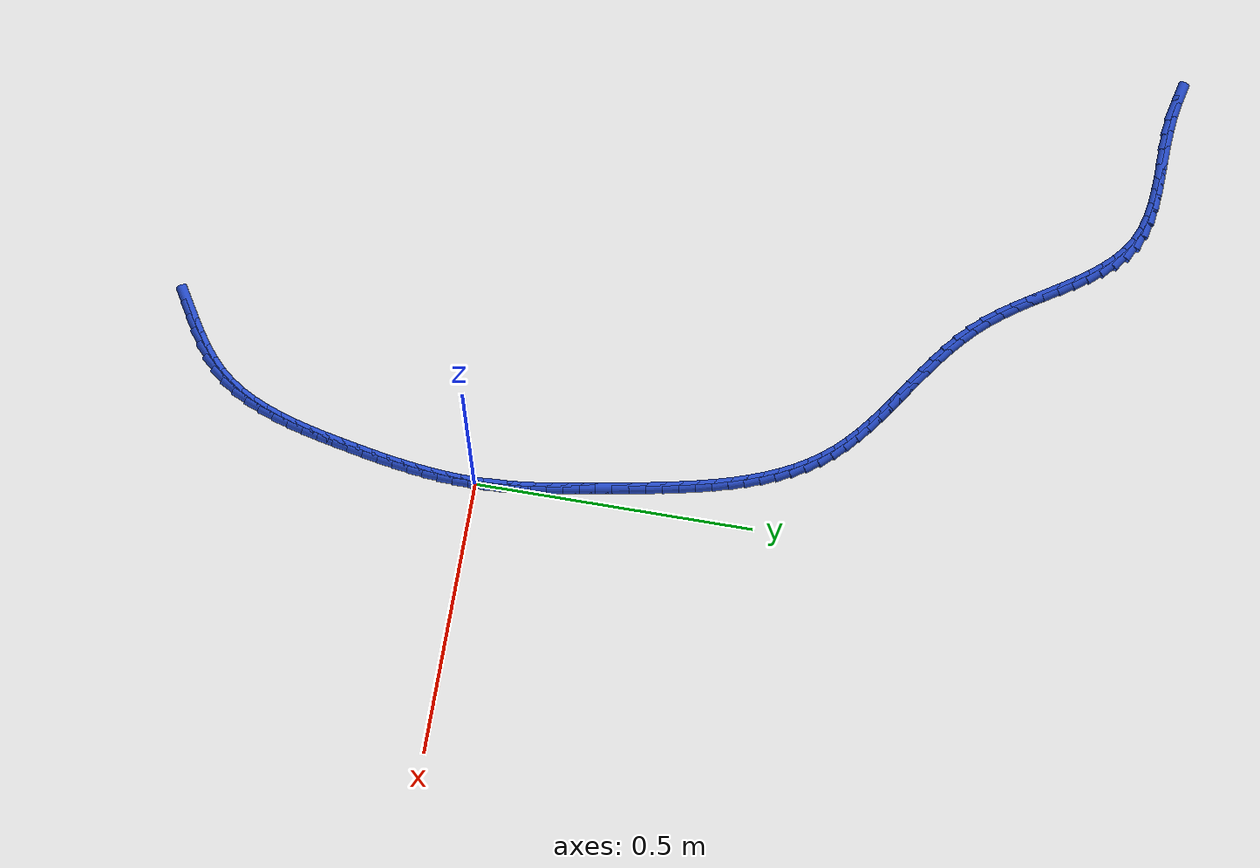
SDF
<sdf version="1.6">
 <world name="default">
  <model name="ground_plane">
   <static>1</static>
   <link name="link">
    <collision name="collision">
     <geometry><plane><normal>0 0 1</normal><size>100 100</size></plane></geometry>
     <surface><friction><ode><mu>100</mu><mu2>50</mu2></ode></friction></surface>
    </collision>
    <visual name="visual">
     <cast_shadows>0</cast_shadows>
     <geometry><plane><normal>0 0 1</normal><size>100 100</size></plane></geometry>
     <material>
      <script><uri>file://media/materials/scripts/gazebo.material</uri><name>Gazebo/WhiteGlow</name></script>
     </material>
    </visual>
   </link>
  </model>
  <model name="line">
   <link name="link_0">
    <pose>5.204170427930421e-18 0.0 0.01 0 1.57 -1.54424491713909</pose>
    <collision name="collision">
     <geometry><cylinder><radius>0.01</radius><length>0.08</length></cylinder></geometry>
    </collision>
    <visual name="visual">
     <material>
      <script><name>Gazebo/Blue</name><uri>file://media/materials/scripts/gazebo.material</uri></script>
     </material>
     <geometry><cylinder><radius>0.01</radius><length>0.08</length></cylinder></geometry>
    </visual>
   </link>
   <link name="link_1">
    <pose>-0.0007331389624055258 0.027605565267062034 0.01 0 1.57 -1.5083042285073311</pose>
    <collision name="collision">
     <geometry><cylinder><radius>0.01</radius><length>0.08</length></cylinder></geometry>
    </collision>
    <visual name="visual">
     <material>
      <script><name>Gazebo/Blue</name><uri>file://media/materials/scripts/gazebo.material</uri></script>
     </material>
     <geometry><cylinder><radius>0.01</radius><length>0.08</length></cylinder></geometry>
    </visual>
   </link>
   <link name="link_2">
    <pose>-0.0024619686038296245 0.05523431500493752 0.01 0 1.57 -1.4771421987249218</pose>
    <collision name="collision">
     <geometry><cylinder><radius>0.01</radius><length>0.08</length></cylinder></geometry>
    </collision>
    <visual name="visual">
     <material>
      <script><name>Gazebo/Blue</name><uri>file://media/materials/scripts/gazebo.material</uri></script>
     </material>
     <geometry><cylinder><radius>0.01</radius><length>0.08</length></cylinder></geometry>
    </visual>
   </link>
   <link name="link_3">
    <pose>-0.005062239104522836 0.08291770385107804 0.01 0 1.57 -1.4508305532315364</pose>
    <collision name="collision">
     <geometry><cylinder><radius>0.01</radius><length>0.08</length></cylinder></geometry>
    </collision>
    <visual name="visual">
     <material>
      <script><name>Gazebo/Blue</name><uri>file://media/materials/scripts/gazebo.material</uri></script>
     </material>
     <geometry><cylinder><radius>0.01</radius><length>0.08</length></cylinder></geometry>
    </visual>
   </link>
   <link name="link_4">
    <pose>-0.008409700644735745 0.11068718644293517 0.01 0 1.57 -1.4293722706245764</pose>
    <collision name="collision">
     <geometry><cylinder><radius>0.01</radius><length>0.08</length></cylinder></geometry>
    </collision>
    <visual name="visual">
     <material>
      <script><name>Gazebo/Blue</name><uri>file://media/materials/scripts/gazebo.material</uri></script>
     </material>
     <geometry><cylinder><radius>0.01</radius><length>0.08</length></cylinder></geometry>
    </visual>
   </link>
   <link name="link_5">
    <pose>-0.012380103404718904 0.13857421741796055 0.01 0 1.57 -1.4127209131629384</pose>
    <collision name="collision">
     <geometry><cylinder><radius>0.01</radius><length>0.08</length></cylinder></geometry>
    </collision>
    <visual name="visual">
     <material>
      <script><name>Gazebo/Blue</name><uri>file://media/materials/scripts/gazebo.material</uri></script>
     </material>
     <geometry><cylinder><radius>0.01</radius><length>0.08</length></cylinder></geometry>
    </visual>
   </link>
   <link name="link_6">
    <pose>-0.01684919756472287 0.1666102514136057 0.01 0 1.57 -1.400796930961854</pose>
    <collision name="collision">
     <geometry><cylinder><radius>0.01</radius><length>0.08</length></cylinder></geometry>
    </collision>
    <visual name="visual">
     <material>
      <script><name>Gazebo/Blue</name><uri>file://media/materials/scripts/gazebo.material</uri></script>
     </material>
     <geometry><cylinder><radius>0.01</radius><length>0.08</length></cylinder></geometry>
    </visual>
   </link>
   <link name="link_7">
    <pose>-0.021692733304998206 0.19482674306732223 0.01 0 1.57 -1.3935002870489166</pose>
    <collision name="collision">
     <geometry><cylinder><radius>0.01</radius><length>0.08</length></cylinder></geometry>
    </collision>
    <visual name="visual">
     <material>
      <script><name>Gazebo/Blue</name><uri>file://media/materials/scripts/gazebo.material</uri></script>
     </material>
     <geometry><cylinder><radius>0.01</radius><length>0.08</length></cylinder></geometry>
    </visual>
   </link>
   <link name="link_8">
    <pose>-0.026786460805795477 0.22325514701656177 0.01 0 1.57 -1.3907170963987456</pose>
    <collision name="collision">
     <geometry><cylinder><radius>0.01</radius><length>0.08</length></cylinder></geometry>
    </collision>
    <visual name="visual">
     <material>
      <script><name>Gazebo/Blue</name><uri>file://media/materials/scripts/gazebo.material</uri></script>
     </material>
     <geometry><cylinder><radius>0.01</radius><length>0.08</length></cylinder></geometry>
    </visual>
   </link>
   <link name="link_9">
    <pose>-0.032006189531151204 0.2519268802707705 0.01 0 1.57 -1.3901957982833777</pose>
    <collision name="collision">
     <geometry><cylinder><radius>0.01</radius><length>0.08</length></cylinder></geometry>
    </collision>
    <visual name="visual">
     <material>
      <script><name>Gazebo/Blue</name><uri>file://media/materials/scripts/gazebo.material</uri></script>
     </material>
     <geometry><cylinder><radius>0.01</radius><length>0.08</length></cylinder></geometry>
    </visual>
   </link>
   <link name="link_10">
    <pose>-0.037284901697947806 0.2808370717276328 0.01 0 1.57 -1.38579645625047</pose>
    <collision name="collision">
     <geometry><cylinder><radius>0.01</radius><length>0.08</length></cylinder></geometry>
    </collision>
    <visual name="visual">
     <material>
      <script><name>Gazebo/Blue</name><uri>file://media/materials/scripts/gazebo.material</uri></script>
     </material>
     <geometry><cylinder><radius>0.01</radius><length>0.08</length></cylinder></geometry>
    </visual>
   </link>
   <link name="link_11">
    <pose>-0.042719401227046545 0.30987687102885747 0.01 0 1.57 -1.3764539676866598</pose>
    <collision name="collision">
     <geometry><cylinder><radius>0.01</radius><length>0.08</length></cylinder></geometry>
    </collision>
    <visual name="visual">
     <material>
      <script><name>Gazebo/Blue</name><uri>file://media/materials/scripts/gazebo.material</uri></script>
     </material>
     <geometry><cylinder><radius>0.01</radius><length>0.08</length></cylinder></geometry>
    </visual>
   </link>
   <link name="link_12">
    <pose>-0.04843564924440772 0.3389189214496653 0.01 0 1.57 -1.3621023409759438</pose>
    <collision name="collision">
     <geometry><cylinder><radius>0.01</radius><length>0.08</length></cylinder></geometry>
    </collision>
    <visual name="visual">
     <material>
      <script><name>Gazebo/Blue</name><uri>file://media/materials/scripts/gazebo.material</uri></script>
     </material>
     <geometry><cylinder><radius>0.01</radius><length>0.08</length></cylinder></geometry>
    </visual>
   </link>
   <link name="link_13">
    <pose>-0.054559606875991644 0.36783586626527703 0.01 0 1.57 -1.3425820299071756</pose>
    <collision name="collision">
     <geometry><cylinder><radius>0.01</radius><length>0.08</length></cylinder></geometry>
    </collision>
    <visual name="visual">
     <material>
      <script><name>Gazebo/Blue</name><uri>file://media/materials/scripts/gazebo.material</uri></script>
     </material>
     <geometry><cylinder><radius>0.01</radius><length>0.08</length></cylinder></geometry>
    </visual>
   </link>
   <link name="link_14">
    <pose>-0.06121723524775858 0.3965003487509133 0.01 0 1.57 -1.3176457476866856</pose>
    <collision name="collision">
     <geometry><cylinder><radius>0.01</radius><length>0.08</length></cylinder></geometry>
    </collision>
    <visual name="visual">
     <material>
      <script><name>Gazebo/Blue</name><uri>file://media/materials/scripts/gazebo.material</uri></script>
     </material>
     <geometry><cylinder><radius>0.01</radius><length>0.08</length></cylinder></geometry>
    </visual>
   </link>
   <link name="link_15">
    <pose>-0.06853449548566888 0.42478501218179493 0.01 0 1.57 -1.2869661867693574</pose>
    <collision name="collision">
     <geometry><cylinder><radius>0.01</radius><length>0.08</length></cylinder></geometry>
    </collision>
    <visual name="visual">
     <material>
      <script><name>Gazebo/Blue</name><uri>file://media/materials/scripts/gazebo.material</uri></script>
     </material>
     <geometry><cylinder><radius>0.01</radius><length>0.08</length></cylinder></geometry>
    </visual>
   </link>
   <link name="link_16">
    <pose>-0.07663734871568284 0.45256249983314273 0.01 0 1.57 -1.2501484863901373</pose>
    <collision name="collision">
     <geometry><cylinder><radius>0.01</radius><length>0.08</length></cylinder></geometry>
    </collision>
    <visual name="visual">
     <material>
      <script><name>Gazebo/Blue</name><uri>file://media/materials/scripts/gazebo.material</uri></script>
     </material>
     <geometry><cylinder><radius>0.01</radius><length>0.08</length></cylinder></geometry>
    </visual>
   </link>
   <link name="link_17">
    <pose>-0.08565175606376073 0.47970545498017714 0.01 0 1.57 -1.2067514088748772</pose>
    <collision name="collision">
     <geometry><cylinder><radius>0.01</radius><length>0.08</length></cylinder></geometry>
    </collision>
    <visual name="visual">
     <material>
      <script><name>Gazebo/Blue</name><uri>file://media/materials/scripts/gazebo.material</uri></script>
     </material>
     <geometry><cylinder><radius>0.01</radius><length>0.08</length></cylinder></geometry>
    </visual>
   </link>
   <link name="link_18">
    <pose>-0.0957036786558629 0.5060865208981193 0.01 0 1.57 -1.156322378079311</pose>
    <collision name="collision">
     <geometry><cylinder><radius>0.01</radius><length>0.08</length></cylinder></geometry>
    </collision>
    <visual name="visual">
     <material>
      <script><name>Gazebo/Blue</name><uri>file://media/materials/scripts/gazebo.material</uri></script>
     </material>
     <geometry><cylinder><radius>0.01</radius><length>0.08</length></cylinder></geometry>
    </visual>
   </link>
   <link name="link_19">
    <pose>-0.10691907761794961 0.5315783408621897 0.01 0 1.57 -1.0984522764906532</pose>
    <collision name="collision">
     <geometry><cylinder><radius>0.01</radius><length>0.08</length></cylinder></geometry>
    </collision>
    <visual name="visual">
     <material>
      <script><name>Gazebo/Blue</name><uri>file://media/materials/scripts/gazebo.material</uri></script>
     </material>
     <geometry><cylinder><radius>0.01</radius><length>0.08</length></cylinder></geometry>
    </visual>
   </link>
   <link name="link_20">
    <pose>-0.11942391407598121 0.5560535581476092 0.01 0 1.57 -1.0328550798418064</pose>
    <collision name="collision">
     <geometry><cylinder><radius>0.01</radius><length>0.08</length></cylinder></geometry>
    </collision>
    <visual name="visual">
     <material>
      <script><name>Gazebo/Blue</name><uri>file://media/materials/scripts/gazebo.material</uri></script>
     </material>
     <geometry><cylinder><radius>0.01</radius><length>0.08</length></cylinder></geometry>
    </visual>
   </link>
   <link name="link_21">
    <pose>-0.13334414915591802 0.5793848160295985 0.01 0 1.57 -0.9594732282296928</pose>
    <collision name="collision">
     <geometry><cylinder><radius>0.01</radius><length>0.08</length></cylinder></geometry>
    </collision>
    <visual name="visual">
     <material>
      <script><name>Gazebo/Blue</name><uri>file://media/materials/scripts/gazebo.material</uri></script>
     </material>
     <geometry><cylinder><radius>0.01</radius><length>0.08</length></cylinder></geometry>
    </visual>
   </link>
   <link name="link_22">
    <pose>-0.1488057439837202 0.6014447577833781 0.01 0 1.57 -0.8787318189471565</pose>
    <collision name="collision">
     <geometry><cylinder><radius>0.01</radius><length>0.08</length></cylinder></geometry>
    </collision>
    <visual name="visual">
     <material>
      <script><name>Gazebo/Blue</name><uri>file://media/materials/scripts/gazebo.material</uri></script>
     </material>
     <geometry><cylinder><radius>0.01</radius><length>0.08</length></cylinder></geometry>
    </visual>
   </link>
   <link name="link_23">
    <pose>-0.16593216040267747 0.6221085500558945 0.01 0 1.57 -0.7987148305769167</pose>
    <collision name="collision">
     <geometry><cylinder><radius>0.01</radius><length>0.08</length></cylinder></geometry>
    </collision>
    <visual name="visual">
     <material>
      <script><name>Gazebo/Blue</name><uri>file://media/materials/scripts/gazebo.material</uri></script>
     </material>
     <geometry><cylinder><radius>0.01</radius><length>0.08</length></cylinder></geometry>
    </visual>
   </link>
   <link name="link_24">
    <pose>-0.1847081599979109 0.6413913965990775 0.01 0 1.57 -0.731348205295567</pose>
    <collision name="collision">
     <geometry><cylinder><radius>0.01</radius><length>0.08</length></cylinder></geometry>
    </collision>
    <visual name="visual">
     <material>
      <script><name>Gazebo/Blue</name><uri>file://media/materials/scripts/gazebo.material</uri></script>
     </material>
     <geometry><cylinder><radius>0.01</radius><length>0.08</length></cylinder></geometry>
    </visual>
   </link>
   <link name="link_25">
    <pose>-0.20490975324323477 0.6595192643002379 0.01 0 1.57 -0.6777987573484665</pose>
    <collision name="collision">
     <geometry><cylinder><radius>0.01</radius><length>0.08</length></cylinder></geometry>
    </collision>
    <visual name="visual">
     <material>
      <script><name>Gazebo/Blue</name><uri>file://media/materials/scripts/gazebo.material</uri></script>
     </material>
     <geometry><cylinder><radius>0.01</radius><length>0.08</length></cylinder></geometry>
    </visual>
   </link>
   <link name="link_26">
    <pose>-0.22629570291233347 0.6767355339868307 0.01 0 1.57 -0.6377801426772267</pose>
    <collision name="collision">
     <geometry><cylinder><radius>0.01</radius><length>0.08</length></cylinder></geometry>
    </collision>
    <visual name="visual">
     <material>
      <script><name>Gazebo/Blue</name><uri>file://media/materials/scripts/gazebo.material</uri></script>
     </material>
     <geometry><cylinder><radius>0.01</radius><length>0.08</length></cylinder></geometry>
    </visual>
   </link>
   <link name="link_27">
    <pose>-0.24862477177889136 0.6932835864863115 0.01 0 1.57 -0.6107711473684513</pose>
    <collision name="collision">
     <geometry><cylinder><radius>0.01</radius><length>0.08</length></cylinder></geometry>
    </collision>
    <visual name="visual">
     <material>
      <script><name>Gazebo/Blue</name><uri>file://media/materials/scripts/gazebo.material</uri></script>
     </material>
     <geometry><cylinder><radius>0.01</radius><length>0.08</length></cylinder></geometry>
    </visual>
   </link>
   <link name="link_28">
    <pose>-0.27165572261659326 0.7094068026261356 0.01 0 1.57 -0.5962293091006922</pose>
    <collision name="collision">
     <geometry><cylinder><radius>0.01</radius><length>0.08</length></cylinder></geometry>
    </collision>
    <visual name="visual">
     <material>
      <script><name>Gazebo/Blue</name><uri>file://media/materials/scripts/gazebo.material</uri></script>
     </material>
     <geometry><cylinder><radius>0.01</radius><length>0.08</length></cylinder></geometry>
    </visual>
   </link>
   <link name="link_29">
    <pose>-0.29514731819912343 0.7253485632337584 0.01 0 1.57 -0.5937137042425366</pose>
    <collision name="collision">
     <geometry><cylinder><radius>0.01</radius><length>0.08</length></cylinder></geometry>
    </collision>
    <visual name="visual">
     <material>
      <script><name>Gazebo/Blue</name><uri>file://media/materials/scripts/gazebo.material</uri></script>
     </material>
     <geometry><cylinder><radius>0.01</radius><length>0.08</length></cylinder></geometry>
    </visual>
   </link>
   <link name="link_30">
    <pose>-0.31885832130016634 0.741352249136635 0.01 0 1.57 -0.6029373252482946</pose>
    <collision name="collision">
     <geometry><cylinder><radius>0.01</radius><length>0.08</length></cylinder></geometry>
    </collision>
    <visual name="visual">
     <material>
      <script><name>Gazebo/Blue</name><uri>file://media/materials/scripts/gazebo.material</uri></script>
     </material>
     <geometry><cylinder><radius>0.01</radius><length>0.08</length></cylinder></geometry>
    </visual>
   </link>
   <link name="link_31">
    <pose>-0.3425474946934065 0.757661241162221 0.01 0 1.57 -0.6237666766379742</pose>
    <collision name="collision">
     <geometry><cylinder><radius>0.01</radius><length>0.08</length></cylinder></geometry>
    </collision>
    <visual name="visual">
     <material>
      <script><name>Gazebo/Blue</name><uri>file://media/materials/scripts/gazebo.material</uri></script>
     </material>
     <geometry><cylinder><radius>0.01</radius><length>0.08</length></cylinder></geometry>
    </visual>
   </link>
   <link name="link_32">
    <pose>-0.3659736011525285 0.7745189201379715 0.01 0 1.57 -0.6561775946210243</pose>
    <collision name="collision">
     <geometry><cylinder><radius>0.01</radius><length>0.08</length></cylinder></geometry>
    </collision>
    <visual name="visual">
     <material>
      <script><name>Gazebo/Blue</name><uri>file://media/materials/scripts/gazebo.material</uri></script>
     </material>
     <geometry><cylinder><radius>0.01</radius><length>0.08</length></cylinder></geometry>
    </visual>
   </link>
   <link name="link_33">
    <pose>-0.3888954034512167 0.7921686668913419 0.01 0 1.57 -0.700168496380361</pose>
    <collision name="collision">
     <geometry><cylinder><radius>0.01</radius><length>0.08</length></cylinder></geometry>
    </collision>
    <visual name="visual">
     <material>
      <script><name>Gazebo/Blue</name><uri>file://media/materials/scripts/gazebo.material</uri></script>
     </material>
     <geometry><cylinder><radius>0.01</radius><length>0.08</length></cylinder></geometry>
    </visual>
   </link>
   <link name="link_34">
    <pose>-0.41107166436315556 0.8108538622497875 0.01 0 1.57 -0.7556292426508752</pose>
    <collision name="collision">
     <geometry><cylinder><radius>0.01</radius><length>0.08</length></cylinder></geometry>
    </collision>
    <visual name="visual">
     <material>
      <script><name>Gazebo/Blue</name><uri>file://media/materials/scripts/gazebo.material</uri></script>
     </material>
     <geometry><cylinder><radius>0.01</radius><length>0.08</length></cylinder></geometry>
    </visual>
   </link>
   <link name="link_35">
    <pose>-0.43226114666202964 0.8308178870407636 0.01 0 1.57 -0.8221605860373753</pose>
    <collision name="collision">
     <geometry><cylinder><radius>0.01</radius><length>0.08</length></cylinder></geometry>
    </collision>
    <visual name="visual">
     <material>
      <script><name>Gazebo/Blue</name><uri>file://media/materials/scripts/gazebo.material</uri></script>
     </material>
     <geometry><cylinder><radius>0.01</radius><length>0.08</length></cylinder></geometry>
    </visual>
   </link>
   <link name="link_36">
    <pose>-0.4522227718889885 0.852303915212467 0.01 0 1.57 -0.8919763719669657</pose>
    <collision name="collision">
     <geometry><cylinder><radius>0.01</radius><length>0.08</length></cylinder></geometry>
    </collision>
    <visual name="visual">
     <material>
      <script><name>Gazebo/Blue</name><uri>file://media/materials/scripts/gazebo.material</uri></script>
     </material>
     <geometry><cylinder><radius>0.01</radius><length>0.08</length></cylinder></geometry>
    </visual>
   </link>
   <link name="link_37">
    <pose>-0.4708443272475295 0.8753872044926834 0.01 0 1.57 -0.9455403787608486</pose>
    <collision name="collision">
     <geometry><cylinder><radius>0.01</radius><length>0.08</length></cylinder></geometry>
    </collision>
    <visual name="visual">
     <material>
      <script><name>Gazebo/Blue</name><uri>file://media/materials/scripts/gazebo.material</uri></script>
     </material>
     <geometry><cylinder><radius>0.01</radius><length>0.08</length></cylinder></geometry>
    </visual>
   </link>
   <link name="link_38">
    <pose>-0.4883749751700896 0.8996721287330119 0.01 0 1.57 -0.9806072500335061</pose>
    <collision name="collision">
     <geometry><cylinder><radius>0.01</radius><length>0.08</length></cylinder></geometry>
    </collision>
    <visual name="visual">
     <material>
      <script><name>Gazebo/Blue</name><uri>file://media/materials/scripts/gazebo.material</uri></script>
     </material>
     <geometry><cylinder><radius>0.01</radius><length>0.08</length></cylinder></geometry>
    </visual>
   </link>
   <link name="link_39">
    <pose>-0.505126748722248 0.924681139270552 0.01 0 1.57 -0.9980810034869929</pose>
    <collision name="collision">
     <geometry><cylinder><radius>0.01</radius><length>0.08</length></cylinder></geometry>
    </collision>
    <visual name="visual">
     <material>
      <script><name>Gazebo/Blue</name><uri>file://media/materials/scripts/gazebo.material</uri></script>
     </material>
     <geometry><cylinder><radius>0.01</radius><length>0.08</length></cylinder></geometry>
    </visual>
   </link>
   <link name="link_40">
    <pose>-0.5214116809695839 0.9499366874424021 0.01 0 1.57 -0.9982461652650182</pose>
    <collision name="collision">
     <geometry><cylinder><radius>0.01</radius><length>0.08</length></cylinder></geometry>
    </collision>
    <visual name="visual">
     <material>
      <script><name>Gazebo/Blue</name><uri>file://media/materials/scripts/gazebo.material</uri></script>
     </material>
     <geometry><cylinder><radius>0.01</radius><length>0.08</length></cylinder></geometry>
    </visual>
   </link>
   <link name="link_41">
    <pose>-0.5375418049776769 0.9749612245856625 0.01 0 1.57 -0.9806132313942009</pose>
    <collision name="collision">
     <geometry><cylinder><radius>0.01</radius><length>0.08</length></cylinder></geometry>
    </collision>
    <visual name="visual">
     <material>
      <script><name>Gazebo/Blue</name><uri>file://media/materials/scripts/gazebo.material</uri></script>
     </material>
     <geometry><cylinder><radius>0.01</radius><length>0.08</length></cylinder></geometry>
    </visual>
   </link>
   <link name="link_42">
    <pose>-0.5538291538121063 0.9992772020374322 0.01 0 1.57 -0.9438438299455865</pose>
    <collision name="collision">
     <geometry><cylinder><radius>0.01</radius><length>0.08</length></cylinder></geometry>
    </collision>
    <visual name="visual">
     <material>
      <script><name>Gazebo/Blue</name><uri>file://media/materials/scripts/gazebo.material</uri></script>
     </material>
     <geometry><cylinder><radius>0.01</radius><length>0.08</length></cylinder></geometry>
    </visual>
   </link>
   <link name="link_43">
    <pose>-0.5705857605384517 1.0224070711348103 0.01 0 1.57 -0.8857750793815372</pose>
    <collision name="collision">
     <geometry><cylinder><radius>0.01</radius><length>0.08</length></cylinder></geometry>
    </collision>
    <visual name="visual">
     <material>
      <script><name>Gazebo/Blue</name><uri>file://media/materials/scripts/gazebo.material</uri></script>
     </material>
     <geometry><cylinder><radius>0.01</radius><length>0.08</length></cylinder></geometry>
    </visual>
   </link>
   <link name="link_44">
    <pose>-0.5881236582222917 1.0438732832148963 0.01 0 1.57 -0.8036746749834545</pose>
    <collision name="collision">
     <geometry><cylinder><radius>0.01</radius><length>0.08</length></cylinder></geometry>
    </collision>
    <visual name="visual">
     <material>
      <script><name>Gazebo/Blue</name><uri>file://media/materials/scripts/gazebo.material</uri></script>
     </material>
     <geometry><cylinder><radius>0.01</radius><length>0.08</length></cylinder></geometry>
    </visual>
   </link>
   <link name="link_45">
    <pose>-0.6067548799292067 1.0631982896147896 0.01 0 1.57 -0.6950063408108956</pose>
    <collision name="collision">
     <geometry><cylinder><radius>0.01</radius><length>0.08</length></cylinder></geometry>
    </collision>
    <visual name="visual">
     <material>
      <script><name>Gazebo/Blue</name><uri>file://media/materials/scripts/gazebo.material</uri></script>
     </material>
     <geometry><cylinder><radius>0.01</radius><length>0.08</length></cylinder></geometry>
    </visual>
   </link>
   <link name="link_46">
    <pose>-0.6267914587247754 1.0799045416715896 0.01 0 1.57 -0.5590526653572756</pose>
    <collision name="collision">
     <geometry><cylinder><radius>0.01</radius><length>0.08</length></cylinder></geometry>
    </collision>
    <visual name="visual">
     <material>
      <script><name>Gazebo/Blue</name><uri>file://media/materials/scripts/gazebo.material</uri></script>
     </material>
     <geometry><cylinder><radius>0.01</radius><length>0.08</length></cylinder></geometry>
    </visual>
   </link>
   <link name="link_47">
    <pose>-0.6485454276745776 1.0935144907223955 0.01 0 1.57 -0.4036813446365644</pose>
    <collision name="collision">
     <geometry><cylinder><radius>0.01</radius><length>0.08</length></cylinder></geometry>
    </collision>
    <visual name="visual">
     <material>
      <script><name>Gazebo/Blue</name><uri>file://media/materials/scripts/gazebo.material</uri></script>
     </material>
     <geometry><cylinder><radius>0.01</radius><length>0.08</length></cylinder></geometry>
    </visual>
   </link>
   <link name="link_48">
    <pose>-0.6722720650776802 1.103649072459971 0.01 0 1.57 -0.26707504589939135</pose>
    <collision name="collision">
     <geometry><cylinder><radius>0.01</radius><length>0.08</length></cylinder></geometry>
    </collision>
    <visual name="visual">
     <material>
      <script><name>Gazebo/Blue</name><uri>file://media/materials/scripts/gazebo.material</uri></script>
     </material>
     <geometry><cylinder><radius>0.01</radius><length>0.08</length></cylinder></geometry>
    </visual>
   </link>
   <link name="link_49">
    <pose>-0.697817799447143 1.1106386838296387 0.01 0 1.57 -0.1644508309351958</pose>
    <collision name="collision">
     <geometry><cylinder><radius>0.01</radius><length>0.08</length></cylinder></geometry>
    </collision>
    <visual name="visual">
     <material>
      <script><name>Gazebo/Blue</name><uri>file://media/materials/scripts/gazebo.material</uri></script>
     </material>
     <geometry><cylinder><radius>0.01</radius><length>0.08</length></cylinder></geometry>
    </visual>
   </link>
   <link name="link_50">
    <pose>-0.7248498800536207 1.1151246445999667 0.01 0 1.57 -0.09286532634721671</pose>
    <collision name="collision">
     <geometry><cylinder><radius>0.01</radius><length>0.08</length></cylinder></geometry>
    </collision>
    <visual name="visual">
     <material>
      <script><name>Gazebo/Blue</name><uri>file://media/materials/scripts/gazebo.material</uri></script>
     </material>
     <geometry><cylinder><radius>0.01</radius><length>0.08</length></cylinder></geometry>
    </visual>
   </link>
   <link name="link_51">
    <pose>-0.7530347945979133 1.1177495960622963 0.01 0 1.57 -0.048457828810924454</pose>
    <collision name="collision">
     <geometry><cylinder><radius>0.01</radius><length>0.08</length></cylinder></geometry>
    </collision>
    <visual name="visual">
     <material>
      <script><name>Gazebo/Blue</name><uri>file://media/materials/scripts/gazebo.material</uri></script>
     </material>
     <geometry><cylinder><radius>0.01</radius><length>0.08</length></cylinder></geometry>
    </visual>
   </link>
   <link name="link_52">
    <pose>-0.7820390307808209 1.1191561795079714 0.01 0 1.57 -0.02816669050583795</pose>
    <collision name="collision">
     <geometry><cylinder><radius>0.01</radius><length>0.08</length></cylinder></geometry>
    </collision>
    <visual name="visual">
     <material>
      <script><name>Gazebo/Blue</name><uri>file://media/materials/scripts/gazebo.material</uri></script>
     </material>
     <geometry><cylinder><radius>0.01</radius><length>0.08</length></cylinder></geometry>
    </visual>
   </link>
   <link name="link_53">
    <pose>-0.8115290763031429 1.1199870362283328 0.01 0 1.57 -0.03027753053303978</pose>
    <collision name="collision">
     <geometry><cylinder><radius>0.01</radius><length>0.08</length></cylinder></geometry>
    </collision>
    <visual name="visual">
     <material>
      <script><name>Gazebo/Blue</name><uri>file://media/materials/scripts/gazebo.material</uri></script>
     </material>
     <geometry><cylinder><radius>0.01</radius><length>0.08</length></cylinder></geometry>
    </visual>
   </link>
   <link name="link_54">
    <pose>-0.8411714188656796 1.120884807514723 0.01 0 1.57 -0.05450352317988771</pose>
    <collision name="collision">
     <geometry><cylinder><radius>0.01</radius><length>0.08</length></cylinder></geometry>
    </collision>
    <visual name="visual">
     <material>
      <script><name>Gazebo/Blue</name><uri>file://media/materials/scripts/gazebo.material</uri></script>
     </material>
     <geometry><cylinder><radius>0.01</radius><length>0.08</length></cylinder></geometry>
    </visual>
   </link>
   <link name="link_55">
    <pose>-0.8706325461692309 1.1224921346584849 0.01 0 1.57 -0.10188749627875246</pose>
    <collision name="collision">
     <geometry><cylinder><radius>0.01</radius><length>0.08</length></cylinder></geometry>
    </collision>
    <visual name="visual">
     <material>
      <script><name>Gazebo/Blue</name><uri>file://media/materials/scripts/gazebo.material</uri></script>
     </material>
     <geometry><cylinder><radius>0.01</radius><length>0.08</length></cylinder></geometry>
    </visual>
   </link>
   <link name="link_56">
    <pose>-0.8995789459145963 1.1254516589509596 0.01 0 1.57 -0.1663708680353121</pose>
    <collision name="collision">
     <geometry><cylinder><radius>0.01</radius><length>0.08</length></cylinder></geometry>
    </collision>
    <visual name="visual">
     <material>
      <script><name>Gazebo/Blue</name><uri>file://media/materials/scripts/gazebo.material</uri></script>
     </material>
     <geometry><cylinder><radius>0.01</radius><length>0.08</length></cylinder></geometry>
    </visual>
   </link>
   <link name="link_57">
    <pose>-0.9277752233743414 1.1301864642435089 0.01 0 1.57 -0.21522411623565835</pose>
    <collision name="collision">
     <geometry><cylinder><radius>0.01</radius><length>0.08</length></cylinder></geometry>
    </collision>
    <visual name="visual">
     <material>
      <script><name>Gazebo/Blue</name><uri>file://media/materials/scripts/gazebo.material</uri></script>
     </material>
     <geometry><cylinder><radius>0.01</radius><length>0.08</length></cylinder></geometry>
    </visual>
   </link>
   <link name="link_227">
    <pose>-0.2399459234580677 -0.5678992133470497 0.01 0 1.57 0.5398313284186451</pose>
    <collision name="collision">
     <geometry><cylinder><radius>0.01</radius><length>0.08</length></cylinder></geometry>
    </collision>
    <visual name="visual">
     <material>
      <script><name>Gazebo/Blue</name><uri>file://media/materials/scripts/gazebo.material</uri></script>
     </material>
     <geometry><cylinder><radius>0.01</radius><length>0.08</length></cylinder></geometry>
    </visual>
   </link>
   <link name="link_228">
    <pose>-0.21539871048371406 -0.5531905142900745 0.01 0 1.57 0.5635274437920983</pose>
    <collision name="collision">
     <geometry><cylinder><radius>0.01</radius><length>0.08</length></cylinder></geometry>
    </collision>
    <visual name="visual">
     <material>
      <script><name>Gazebo/Blue</name><uri>file://media/materials/scripts/gazebo.material</uri></script>
     </material>
     <geometry><cylinder><radius>0.01</radius><length>0.08</length></cylinder></geometry>
    </visual>
   </link>
   <link name="link_229">
    <pose>-0.1914934816215214 -0.5380854119545758 0.01 0 1.57 0.6084309218906792</pose>
    <collision name="collision">
     <geometry><cylinder><radius>0.01</radius><length>0.08</length></cylinder></geometry>
    </collision>
    <visual name="visual">
     <material>
      <script><name>Gazebo/Blue</name><uri>file://media/materials/scripts/gazebo.material</uri></script>
     </material>
     <geometry><cylinder><radius>0.01</radius><length>0.08</length></cylinder></geometry>
    </visual>
   </link>
   <link name="link_230">
    <pose>-0.1686447439026431 -0.5221693042130012 0.01 0 1.57 0.6758672565799406</pose>
    <collision name="collision">
     <geometry><cylinder><radius>0.01</radius><length>0.08</length></cylinder></geometry>
    </collision>
    <visual name="visual">
     <material>
      <script><name>Gazebo/Blue</name><uri>file://media/materials/scripts/gazebo.material</uri></script>
     </material>
     <geometry><cylinder><radius>0.01</radius><length>0.08</length></cylinder></geometry>
    </visual>
   </link>
   <link name="link_231">
    <pose>-0.14726700435823262 -0.5050275889377978 0.01 0 1.57 0.76684183491624</pose>
    <collision name="collision">
     <geometry><cylinder><radius>0.01</radius><length>0.08</length></cylinder></geometry>
    </collision>
    <visual name="visual">
     <material>
      <script><name>Gazebo/Blue</name><uri>file://media/materials/scripts/gazebo.material</uri></script>
     </material>
     <geometry><cylinder><radius>0.01</radius><length>0.08</length></cylinder></geometry>
    </visual>
   </link>
   <link name="link_232">
    <pose>-0.12777477001944315 -0.4862456640014124 0.01 0 1.57 0.8782454401401211</pose>
    <collision name="collision">
     <geometry><cylinder><radius>0.01</radius><length>0.08</length></cylinder></geometry>
    </collision>
    <visual name="visual">
     <material>
      <script><name>Gazebo/Blue</name><uri>file://media/materials/scripts/gazebo.material</uri></script>
     </material>
     <geometry><cylinder><radius>0.01</radius><length>0.08</length></cylinder></geometry>
    </visual>
   </link>
   <link name="link_233">
    <pose>-0.11053189822092864 -0.46546194631453425 0.01 0 1.57 0.9862393758634109</pose>
    <collision name="collision">
     <geometry><cylinder><radius>0.01</radius><length>0.08</length></cylinder></geometry>
    </collision>
    <visual name="visual">
     <material>
      <script><name>Gazebo/Blue</name><uri>file://media/materials/scripts/gazebo.material</uri></script>
     </material>
     <geometry><cylinder><radius>0.01</radius><length>0.08</length></cylinder></geometry>
    </visual>
   </link>
   <link name="link_234">
    <pose>-0.09549649135806325 -0.4427395885341523 0.01 0 1.57 1.079093526248111</pose>
    <collision name="collision">
     <geometry><cylinder><radius>0.01</radius><length>0.08</length></cylinder></geometry>
    </collision>
    <visual name="visual">
     <material>
      <script><name>Gazebo/Blue</name><uri>file://media/materials/scripts/gazebo.material</uri></script>
     </material>
     <geometry><cylinder><radius>0.01</radius><length>0.08</length></cylinder></geometry>
    </visual>
   </link>
   <link name="link_235">
    <pose>-0.0824317241570206 -0.4183457895063152 0.01 0 1.57 1.1568864968173422</pose>
    <collision name="collision">
     <geometry><cylinder><radius>0.01</radius><length>0.08</length></cylinder></geometry>
    </collision>
    <visual name="visual">
     <material>
      <script><name>Gazebo/Blue</name><uri>file://media/materials/scripts/gazebo.material</uri></script>
     </material>
     <geometry><cylinder><radius>0.01</radius><length>0.08</length></cylinder></geometry>
    </visual>
   </link>
   <link name="link_236">
    <pose>-0.07109953441087624 -0.392549042872653 0.01 0 1.57 1.2205663672097296</pose>
    <collision name="collision">
     <geometry><cylinder><radius>0.01</radius><length>0.08</length></cylinder></geometry>
    </collision>
    <visual name="visual">
     <material>
      <script><name>Gazebo/Blue</name><uri>file://media/materials/scripts/gazebo.material</uri></script>
     </material>
     <geometry><cylinder><radius>0.01</radius><length>0.08</length></cylinder></geometry>
    </visual>
   </link>
   <link name="link_237">
    <pose>-0.061261859912705725 -0.36561784227479643 0.01 0 1.57 1.271369302428394</pose>
    <collision name="collision">
     <geometry><cylinder><radius>0.01</radius><length>0.08</length></cylinder></geometry>
    </collision>
    <visual name="visual">
     <material>
      <script><name>Gazebo/Blue</name><uri>file://media/materials/scripts/gazebo.material</uri></script>
     </material>
     <geometry><cylinder><radius>0.01</radius><length>0.08</length></cylinder></geometry>
    </visual>
   </link>
   <link name="link_238">
    <pose>-0.05268063845558461 -0.33782068135437565 0.01 0 1.57 1.3104921809575893</pose>
    <collision name="collision">
     <geometry><cylinder><radius>0.01</radius><length>0.08</length></cylinder></geometry>
    </collision>
    <visual name="visual">
     <material>
      <script><name>Gazebo/Blue</name><uri>file://media/materials/scripts/gazebo.material</uri></script>
     </material>
     <geometry><cylinder><radius>0.01</radius><length>0.08</length></cylinder></geometry>
    </visual>
   </link>
   <link name="link_239">
    <pose>-0.0451178078325884 -0.3094260537530209 0.01 0 1.57 1.3389138346849252</pose>
    <collision name="collision">
     <geometry><cylinder><radius>0.01</radius><length>0.08</length></cylinder></geometry>
    </collision>
    <visual name="visual">
     <material>
      <script><name>Gazebo/Blue</name><uri>file://media/materials/scripts/gazebo.material</uri></script>
     </material>
     <geometry><cylinder><radius>0.01</radius><length>0.08</length></cylinder></geometry>
    </visual>
   </link>
   <link name="link_240">
    <pose>-0.03833530583679285 -0.28070245311236336 0.01 0 1.57 1.3573054094737977</pose>
    <collision name="collision">
     <geometry><cylinder><radius>0.01</radius><length>0.08</length></cylinder></geometry>
    </collision>
    <visual name="visual">
     <material>
      <script><name>Gazebo/Blue</name><uri>file://media/materials/scripts/gazebo.material</uri></script>
     </material>
     <geometry><cylinder><radius>0.01</radius><length>0.08</length></cylinder></geometry>
    </visual>
   </link>
   <link name="link_241">
    <pose>-0.03209507026127311 -0.2519183730740318 0.01 0 1.57 1.36752065160973</pose>
    <collision name="collision">
     <geometry><cylinder><radius>0.01</radius><length>0.08</length></cylinder></geometry>
    </collision>
    <visual name="visual">
     <material>
      <script><name>Gazebo/Blue</name><uri>file://media/materials/scripts/gazebo.material</uri></script>
     </material>
     <geometry><cylinder><radius>0.01</radius><length>0.08</length></cylinder></geometry>
    </visual>
   </link>
   <link name="link_242">
    <pose>-0.02619782702237726 -0.22330800477137178 0.01 0 1.57 1.378262989443922</pose>
    <collision name="collision">
     <geometry><cylinder><radius>0.01</radius><length>0.08</length></cylinder></geometry>
    </collision>
    <visual name="visual">
     <material>
      <script><name>Gazebo/Blue</name><uri>file://media/materials/scripts/gazebo.material</uri></script>
     </material>
     <geometry><cylinder><radius>0.01</radius><length>0.08</length></cylinder></geometry>
    </visual>
   </link>
   <link name="link_243">
    <pose>-0.020662235697344968 -0.1949128084041914 0.01 0 1.57 1.3926287444491656</pose>
    <collision name="collision">
     <geometry><cylinder><radius>0.01</radius><length>0.08</length></cylinder></geometry>
    </collision>
    <visual name="visual">
     <material>
      <script><name>Gazebo/Blue</name><uri>file://media/materials/scripts/gazebo.material</uri></script>
     </material>
     <geometry><cylinder><radius>0.01</radius><length>0.08</length></cylinder></geometry>
    </visual>
   </link>
   <link name="link_244">
    <pose>-0.015583013351699525 -0.16670698227865935 0.01 0 1.57 1.4107059028537017</pose>
    <collision name="collision">
     <geometry><cylinder><radius>0.01</radius><length>0.08</length></cylinder></geometry>
    </collision>
    <visual name="visual">
     <material>
      <script><name>Gazebo/Blue</name><uri>file://media/materials/scripts/gazebo.material</uri></script>
     </material>
     <geometry><cylinder><radius>0.01</radius><length>0.08</length></cylinder></geometry>
    </visual>
   </link>
   <link name="link_245">
    <pose>-0.0110549559167811 -0.13866465495548844 0.01 0 1.57 1.4325637580775716</pose>
    <collision name="collision">
     <geometry><cylinder><radius>0.01</radius><length>0.08</length></cylinder></geometry>
    </collision>
    <visual name="visual">
     <material>
      <script><name>Gazebo/Blue</name><uri>file://media/materials/scripts/gazebo.material</uri></script>
     </material>
     <geometry><cylinder><radius>0.01</radius><length>0.08</length></cylinder></geometry>
    </visual>
   </link>
   <link name="link_246">
    <pose>-0.007172859323929852 -0.11075995499539144 0.01 0 1.57 1.4582474526659102</pose>
    <collision name="collision">
     <geometry><cylinder><radius>0.01</radius><length>0.08</length></cylinder></geometry>
    </collision>
    <visual name="visual">
     <material>
      <script><name>Gazebo/Blue</name><uri>file://media/materials/scripts/gazebo.material</uri></script>
     </material>
     <geometry><cylinder><radius>0.01</radius><length>0.08</length></cylinder></geometry>
    </visual>
   </link>
   <link name="link_247">
    <pose>-0.004031519504485955 -0.08296701095908127 0.01 0 1.57 1.487767446287694</pose>
    <collision name="collision">
     <geometry><cylinder><radius>0.01</radius><length>0.08</length></cylinder></geometry>
    </collision>
    <visual name="visual">
     <material>
      <script><name>Gazebo/Blue</name><uri>file://media/materials/scripts/gazebo.material</uri></script>
     </material>
     <geometry><cylinder><radius>0.01</radius><length>0.08</length></cylinder></geometry>
    </visual>
   </link>
   <link name="link_248">
    <pose>-0.0017257323897895667 -0.05525995140727073 0.01 0 1.57 1.5210873859680027</pose>
    <collision name="collision">
     <geometry><cylinder><radius>0.01</radius><length>0.08</length></cylinder></geometry>
    </collision>
    <visual name="visual">
     <material>
      <script><name>Gazebo/Blue</name><uri>file://media/materials/scripts/gazebo.material</uri></script>
     </material>
     <geometry><cylinder><radius>0.01</radius><length>0.08</length></cylinder></geometry>
    </visual>
   </link>
   <link name="link_249">
    <pose>-0.0003502939111808584 -0.027612904900672662 0.01 0 1.57 1.5581111303930613</pose>
    <collision name="collision">
     <geometry><cylinder><radius>0.01</radius><length>0.08</length></cylinder></geometry>
    </collision>
    <visual name="visual">
     <material>
      <script><name>Gazebo/Blue</name><uri>file://media/materials/scripts/gazebo.material</uri></script>
     </material>
     <geometry><cylinder><radius>0.01</radius><length>0.08</length></cylinder></geometry>
    </visual>
   </link>
   <link name="link_250">
    <pose>1.1275702593849246e-17 1.3183898417423734e-16 0.01 0 1.57 -1.5429224839148827</pose>
    <collision name="collision">
     <geometry><cylinder><radius>0.01</radius><length>0.08</length></cylinder></geometry>
    </collision>
    <visual name="visual">
     <material>
      <script><name>Gazebo/Blue</name><uri>file://media/materials/scripts/gazebo.material</uri></script>
     </material>
     <geometry><cylinder><radius>0.01</radius><length>0.08</length></cylinder></geometry>
    </visual>
   </link>
   <link name="link_251">
    <pose>-0.0007696465875871236 0.02760463473403478 0.01 0 1.57 -1.4990794768853628</pose>
    <collision name="collision">
     <geometry><cylinder><radius>0.01</radius><length>0.08</length></cylinder></geometry>
    </collision>
    <visual name="visual">
     <material>
      <script><name>Gazebo/Blue</name><uri>file://media/materials/scripts/gazebo.material</uri></script>
     </material>
     <geometry><cylinder><radius>0.01</radius><length>0.08</length></cylinder></geometry>
    </visual>
   </link>
   <link name="link_252">
    <pose>-0.002754029605282428 0.05522687074071845 0.01 0 1.57 -1.5209700359807954</pose>
    <collision name="collision">
     <geometry><cylinder><radius>0.01</radius><length>0.08</length></cylinder></geometry>
    </collision>
    <visual name="visual">
     <material>
      <script><name>Gazebo/Blue</name><uri>file://media/materials/scripts/gazebo.material</uri></script>
     </material>
     <geometry><cylinder><radius>0.01</radius><length>0.08</length></cylinder></geometry>
    </visual>
   </link>
  </model>
 </world>
</sdf>
